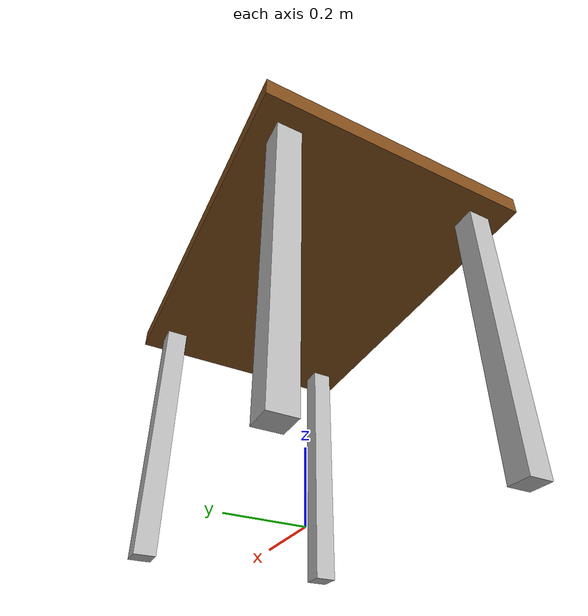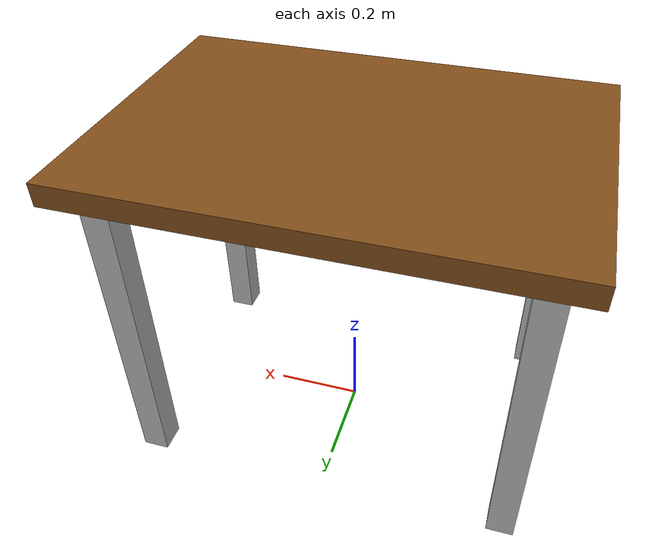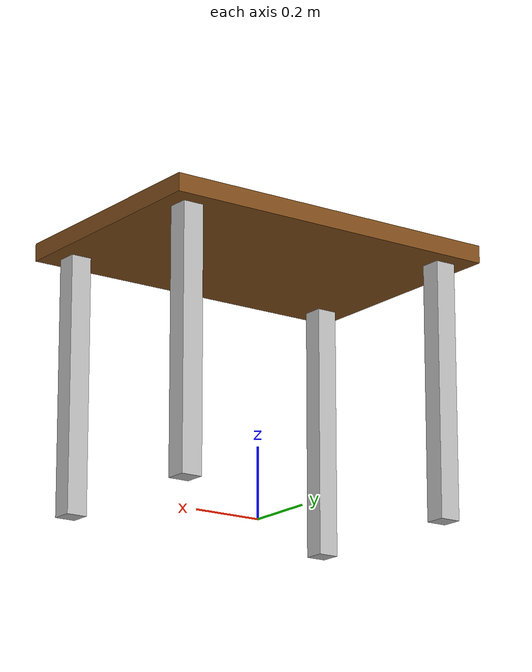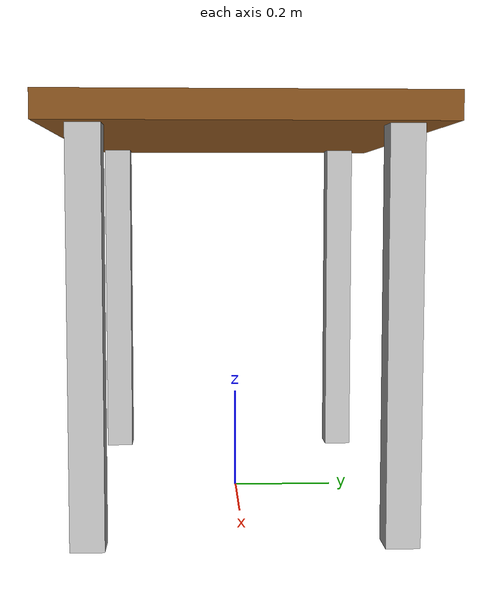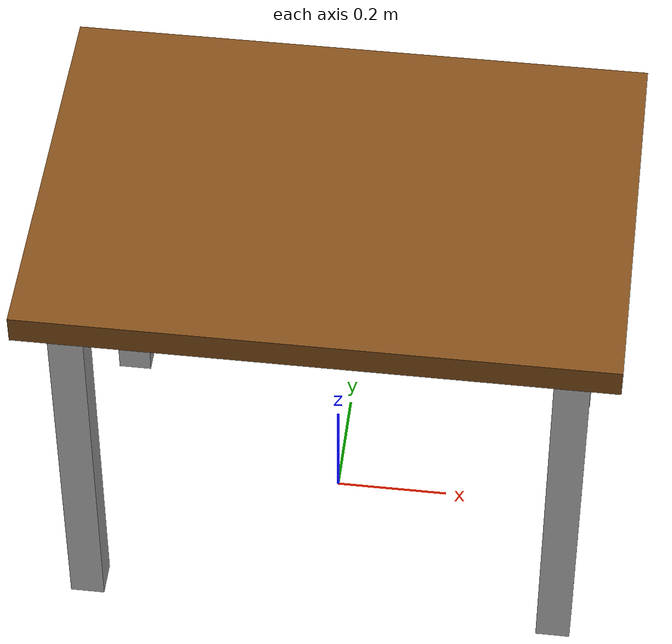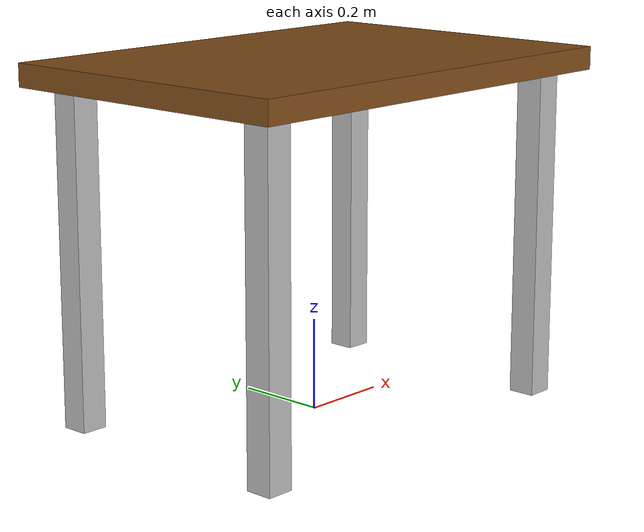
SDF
<?xml version="1.0"?>
<sdf version="1.9">
  <model name="table">
    <static>true</static>

    <link name="table_link">

      <!-- Mặt bàn -->
      <collision name="table_top_collision">
        <pose>0 0 0.75 0 0 0</pose>
        <geometry>
          <box>
            <size>1.0 0.7 0.05</size>
          </box>
        </geometry>
      </collision>

      <visual name="table_top_visual">
        <pose>0 0 0.75 0 0 0</pose>
        <geometry>
          <box>
            <size>1.0 0.7 0.05</size>
          </box>
        </geometry>
        <material>
          <ambient>0.5 0.3 0.1 1</ambient>
          <diffuse>0.5 0.3 0.1 1</diffuse>
        </material>
      </visual>

      <!-- Chân 1 -->
      <collision name="leg_1_collision">
        <pose>0.42 0.27 0.375 0 0 0</pose>
        <geometry>
          <box>
            <size>0.06 0.06 0.75</size>
          </box>
        </geometry>
      </collision>

      <visual name="leg_1_visual">
        <pose>0.42 0.27 0.375 0 0 0</pose>
        <geometry>
          <box>
            <size>0.06 0.06 0.75</size>
          </box>
        </geometry>
      </visual>

      <!-- Chân 2 -->
      <collision name="leg_2_collision">
        <pose>0.42 -0.27 0.375 0 0 0</pose>
        <geometry>
          <box>
            <size>0.06 0.06 0.75</size>
          </box>
        </geometry>
      </collision>

      <visual name="leg_2_visual">
        <pose>0.42 -0.27 0.375 0 0 0</pose>
        <geometry>
          <box>
            <size>0.06 0.06 0.75</size>
          </box>
        </geometry>
      </visual>

      <!-- Chân 3 -->
      <collision name="leg_3_collision">
        <pose>-0.42 0.27 0.375 0 0 0</pose>
        <geometry>
          <box>
            <size>0.06 0.06 0.75</size>
          </box>
        </geometry>
      </collision>

      <visual name="leg_3_visual">
        <pose>-0.42 0.27 0.375 0 0 0</pose>
        <geometry>
          <box>
            <size>0.06 0.06 0.75</size>
          </box>
        </geometry>
      </visual>

      <!-- Chân 4 -->
      <collision name="leg_4_collision">
        <pose>-0.42 -0.27 0.375 0 0 0</pose>
        <geometry>
          <box>
            <size>0.06 0.06 0.75</size>
          </box>
        </geometry>
      </collision>

      <visual name="leg_4_visual">
        <pose>-0.42 -0.27 0.375 0 0 0</pose>
        <geometry>
          <box>
            <size>0.06 0.06 0.75</size>
          </box>
        </geometry>
      </visual>

    </link>
  </model>
</sdf>
